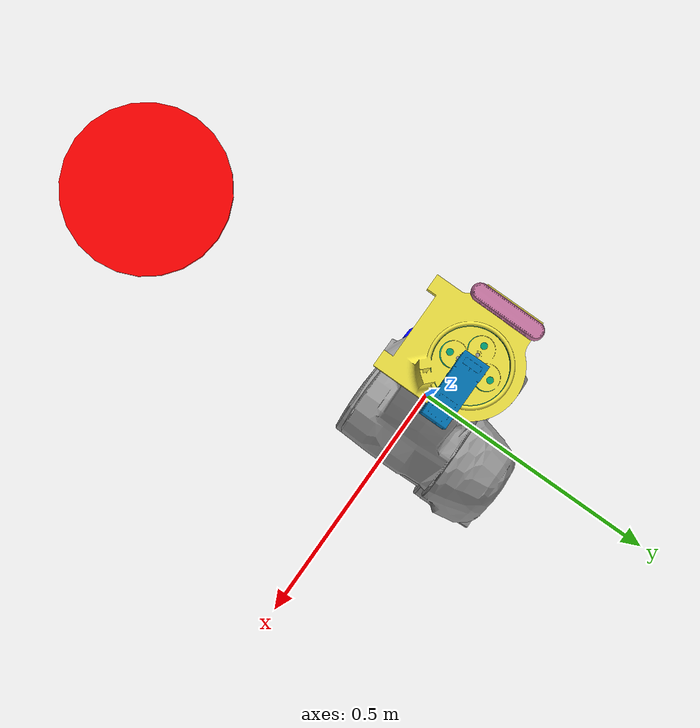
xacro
<?xml version="1.0" encoding="utf-8" ?>
<!-- |    This document was autogenerated by xacro from /home/tomasz/Projects/AddPostPro/src/add_post_pro_robot/urdf/multisensor_robot.urdf.xacro | -->
<!-- |    EDITING THIS FILE BY HAND IS NOT RECOMMENDED                                 | -->
<robot name="add_post_pro_robot">
    <transmission name="trans_1">
        <type>transmission_interface/SimpleTransmission</type>
        <joint name="joint_1">
            <hardwareInterface>hardware_interface/PositionJointInterface</hardwareInterface>
        </joint>
        <actuator name="motor_1">
            <hardwareInterface>hardware_interface/PositionJointInterface</hardwareInterface>
            <mechanicalReduction>1</mechanicalReduction>
        </actuator>
    </transmission>
    <transmission name="trans_2">
        <type>transmission_interface/SimpleTransmission</type>
        <joint name="joint_2">
            <hardwareInterface>hardware_interface/PositionJointInterface</hardwareInterface>
        </joint>
        <actuator name="motor_2">
            <hardwareInterface>hardware_interface/PositionJointInterface</hardwareInterface>
            <mechanicalReduction>1</mechanicalReduction>
        </actuator>
    </transmission>
    <transmission name="trans_3">
        <type>transmission_interface/SimpleTransmission</type>
        <joint name="joint_3">
            <hardwareInterface>hardware_interface/PositionJointInterface</hardwareInterface>
        </joint>
        <actuator name="motor_3">
            <hardwareInterface>hardware_interface/PositionJointInterface</hardwareInterface>
            <mechanicalReduction>1</mechanicalReduction>
        </actuator>
    </transmission>
    <transmission name="trans_4">
        <type>transmission_interface/SimpleTransmission</type>
        <joint name="joint_4">
            <hardwareInterface>hardware_interface/PositionJointInterface</hardwareInterface>
        </joint>
        <actuator name="motor_4">
            <hardwareInterface>hardware_interface/PositionJointInterface</hardwareInterface>
            <mechanicalReduction>1</mechanicalReduction>
        </actuator>
    </transmission>
    <transmission name="trans_5">
        <type>transmission_interface/SimpleTransmission</type>
        <joint name="joint_5">
            <hardwareInterface>hardware_interface/PositionJointInterface</hardwareInterface>
        </joint>
        <actuator name="motor_5">
            <hardwareInterface>hardware_interface/PositionJointInterface</hardwareInterface>
            <mechanicalReduction>1</mechanicalReduction>
        </actuator>
    </transmission>
    <transmission name="trans_6">
        <type>transmission_interface/SimpleTransmission</type>
        <joint name="joint_6">
            <hardwareInterface>hardware_interface/PositionJointInterface</hardwareInterface>
        </joint>
        <actuator name="motor_6">
            <hardwareInterface>hardware_interface/PositionJointInterface</hardwareInterface>
            <mechanicalReduction>1</mechanicalReduction>
        </actuator>
    </transmission>
    <gazebo>
        <plugin filename="libgazebo_ros_control.so" name="gazebo_ros_control">
            <robotNamespace>/add_post_pro_robot</robotNamespace>
        </plugin>
    </gazebo>
    <link name="world" />
    <joint name="joint_w" type="fixed">
        <parent link="world" />
        <child link="base_link" />
        <origin xyz="0 0 0" />
    </joint>
    <link name="base_link">
        <visual>
            <origin rpy="0 0 0" xyz="0 0 0" />
            <geometry>
                <mesh filename="package://denso_robot_descriptions/vs6577_description/meshes/base_link.dae" scale="1 1 1" />
            </geometry>
        </visual>
        <collision>
            <origin rpy="0 0 0" xyz="0 0 0" />
            <geometry>
                <mesh filename="package://denso_robot_descriptions/vs6577_description/meshes/base_link.dae" scale="1 1 1" />
            </geometry>
        </collision>

<inertial>
            <mass value="1" />
            <origin rpy="0.000000 0.000000 0.000000" xyz="0.000000 0.000000 0.000000" />
            <inertia ixx="1" ixy="0" ixz="0" iyy="1" iyz="0" izz="1" />
        </inertial>

    </link>
    <link name="J1">
        <visual>
            <origin rpy="0 0 0" xyz="0 0 0" />
            <geometry>
                <mesh filename="package://denso_robot_descriptions/vs6577_description/meshes/J1.dae" scale="1 1 1" />
            </geometry>
        </visual>
        <collision>
            <origin rpy="0 0 0" xyz="0 0 0" />
            <geometry>
                <mesh filename="package://denso_robot_descriptions/vs6577_description/meshes/J1.dae" scale="1 1 1" />
            </geometry>
        </collision>

<inertial>
            <mass value="1" />
            <origin rpy="0.000000 0.000000 0.000000" xyz="0.000000 0.000000 0.000000" />
            <inertia ixx="1" ixy="0" ixz="0" iyy="1" iyz="0" izz="1" />
        </inertial>

    </link>
    <link name="J2">
        <visual>
            <origin rpy="0 0 0" xyz="0 0 0" />
            <geometry>
                <mesh filename="package://denso_robot_descriptions/vs6577_description/meshes/J2.dae" scale="1 1 1" />
            </geometry>
        </visual>
        <collision>
            <origin rpy="0 0 0" xyz="0 0 0" />
            <geometry>
                <mesh filename="package://denso_robot_descriptions/vs6577_description/meshes/J2.dae" scale="1 1 1" />
            </geometry>
        </collision>

<inertial>
            <mass value="1" />
            <origin rpy="0.000000 0.000000 0.000000" xyz="0.000000 0.000000 0.000000" />
            <inertia ixx="1" ixy="0" ixz="0" iyy="1" iyz="0" izz="1" />
        </inertial>

    </link>
    <link name="J3">
        <visual>
            <origin rpy="0 0 0" xyz="0 0 0" />
            <geometry>
                <mesh filename="package://denso_robot_descriptions/vs6577_description/meshes/J3.dae" scale="1 1 1" />
            </geometry>
        </visual>
        <collision>
            <origin rpy="0 0 0" xyz="0 0 0" />
            <geometry>
                <mesh filename="package://denso_robot_descriptions/vs6577_description/meshes/J3.dae" scale="1 1 1" />
            </geometry>
        </collision>

<inertial>
            <mass value="1" />
            <origin rpy="0.000000 0.000000 0.000000" xyz="0.000000 0.000000 0.000000" />
            <inertia ixx="1" ixy="0" ixz="0" iyy="1" iyz="0" izz="1" />
        </inertial>

    </link>
    <link name="J4">
        <visual>
            <origin rpy="0 0 0" xyz="0 0 0" />
            <geometry>
                <mesh filename="package://denso_robot_descriptions/vs6577_description/meshes/J4.dae" scale="1 1 1" />
            </geometry>
        </visual>
        <collision>
            <origin rpy="0 0 0" xyz="0 0 0" />
            <geometry>
                <mesh filename="package://denso_robot_descriptions/vs6577_description/meshes/J4.dae" scale="1 1 1" />
            </geometry>
        </collision>

<inertial>
            <mass value="1" />
            <origin rpy="0.000000 0.000000 0.000000" xyz="0.000000 0.000000 0.000000" />
            <inertia ixx="1" ixy="0" ixz="0" iyy="1" iyz="0" izz="1" />
        </inertial>

    </link>
    <link name="J5">
        <visual>
            <origin rpy="0 0 0" xyz="0 0 0" />
            <geometry>
                <mesh filename="package://denso_robot_descriptions/vs6577_description/meshes/J5.dae" scale="1 1 1" />
            </geometry>
        </visual>
        <collision>
            <origin rpy="0 0 0" xyz="0 0 0" />
            <geometry>
                <mesh filename="package://denso_robot_descriptions/vs6577_description/meshes/J5.dae" scale="1 1 1" />
            </geometry>
        </collision>

<inertial>
            <mass value="1" />
            <origin rpy="0.000000 0.000000 0.000000" xyz="0.000000 0.000000 0.000000" />
            <inertia ixx="1" ixy="0" ixz="0" iyy="1" iyz="0" izz="1" />
        </inertial>

    </link>
    <link name="J6">
        <visual>
            <origin rpy="0 0 0" xyz="0 0 0" />
            <geometry>
                <mesh filename="package://denso_robot_descriptions/vs6577_description/meshes/J6.dae" scale="1 1 1" />
            </geometry>
        </visual>
        <collision>
            <origin rpy="0 0 0" xyz="0 0 0" />
            <geometry>
                <mesh filename="package://denso_robot_descriptions/vs6577_description/meshes/J6.dae" scale="1 1 1" />
            </geometry>
        </collision>

<inertial>
            <mass value="1" />
            <origin rpy="0.000000 0.000000 0.000000" xyz="0.000000 0.000000 0.000000" />
            <inertia ixx="1" ixy="0" ixz="0" iyy="1" iyz="0" izz="1" />
        </inertial>

    </link>
    <gazebo reference="base_link">
        <material>Gazebo/CoM</material>
    </gazebo>
    <gazebo reference="J1">
        <material>Gazebo/Gray</material>
    </gazebo>
    <gazebo reference="J2">
        <material>Gazebo/Gray</material>
    </gazebo>
    <gazebo reference="J3">
        <material>Gazebo/Gray</material>
    </gazebo>
    <gazebo reference="J4">
        <material>Gazebo/Gray</material>
    </gazebo>
    <gazebo reference="J5">
        <material>Gazebo/Gray</material>
    </gazebo>
    <gazebo reference="J6">
        <material>Gazebo/Gray</material>
    </gazebo>
    <gazebo reference="EEF_tool_mount">
        <material>Gazebo/CoM</material>
    </gazebo>
    <gazebo>
        <gravity>False</gravity>
    </gazebo>
    <joint name="joint_1" type="revolute">
        <parent link="base_link" />
        <child link="J1" />
        <origin rpy="0.000000 0.000000 0.000000" xyz="0.000000 0.000000 0.000000" />
        <axis xyz="-0.000000 -0.000000 1.000000" />
        <limit effort="100" lower="-2.96706" upper="2.96706" velocity="10" />
        <dynamics damping="0" friction="0" />
    </joint>
    <joint name="joint_2" type="revolute">
        <parent link="J1" />
        <child link="J2" />
        <origin rpy="0.000000 0.000000 0.000000" xyz="0.075000 0.000000 0.335000" />
        <axis xyz="-0.000000 1.000000 -0.000000" />
        <limit effort="100" lower="-1.745329" upper="2.356194" velocity="10" />
        <dynamics damping="0" friction="0" />
    </joint>
    <joint name="joint_3" type="revolute">
        <parent link="J2" />
        <child link="J3" />
        <origin rpy="0.000000 0.000000 0.000000" xyz="0.000000 0.000000 0.365000" />
        <axis xyz="-0.000000 1.000000 -0.000000" />
        <limit effort="100" lower="-2.076942" upper="2.949606" velocity="10" />
        <dynamics damping="0" friction="0" />
    </joint>
    <joint name="joint_4" type="revolute">
        <parent link="J3" />
        <child link="J4" />
        <origin rpy="0.000000 0.000000 0.000000" xyz="-0.090000 0.000000 -0.700000" />
        <axis xyz="-0.000000 -0.000000 1.000000" />
        <limit effort="100" lower="-3.316126" upper="3.316126" velocity="10" />
        <dynamics damping="0" friction="0" />
    </joint>
    <joint name="joint_5" type="revolute">
        <parent link="J4" />
        <child link="J5" />
        <origin rpy="0.000000 0.000000 0.000000" xyz="0.000000 0.000000 1.105000" />
        <axis xyz="-0.000000 1.000000 -0.000000" />
        <limit effort="100" lower="-2.094395" upper="2.094395" velocity="10" />
        <dynamics damping="0" friction="0" />
    </joint>
    <joint name="joint_6" type="revolute">
        <parent link="J5" />
        <child link="J6" />
        <origin rpy="0.000000 0.000000 0.000000" xyz="0.000000 0.000000 0.080000" />
        <axis xyz="-0.000000 -0.000000 1.000000" />
        <limit effort="100" lower="-6.283185" upper="6.283185" velocity="10" />
        <dynamics damping="0" friction="0" />
    </joint>
    <link name="turntable_base">
        <visual>
            <origin rpy="0 0 0" xyz="0 0 0" />
            <geometry>
                <cylinder length=".32" radius=".02" />
            </geometry>
        </visual>
        <collision>
            <origin rpy="0 0 0" xyz="0 0 0" />
            <geometry>
                <cylinder length=".32" radius=".02" />
            </geometry>
        </collision>

        <inertial>
            <origin rpy="0 0 0" xyz="0 0 0" />
            <mass value="1" />
            <inertia ixx="100" ixy="0" ixz="0" iyy="100" iyz="0" izz="100" />
        </inertial>

    </link>
    <link name="turntable_plate">
        <visual>
            <origin rpy="0 0 0" xyz="0 0 0" />
            <geometry>
                <cylinder length=".01" radius=".15" />
            </geometry>
            <material name="Red">
                <color rgba="1.0 0 0 1.0" />
            </material>
        </visual>
        <collision>
            <origin rpy="0 0 0" xyz="0 0 0" />
            <geometry>
                <cylinder length=".01" radius=".15" />
            </geometry>
        </collision>

<inertial>
            <origin rpy="0 0 0" xyz="0 0 0" />
            <mass value="1" />
            <inertia ixx="100" ixy="0" ixz="0" iyy="100" iyz="0" izz="100" />
        </inertial>

    </link>
    <joint name="turntable_joint" type="fixed">
        <parent link="world" />
        <child link="turntable_base" />
        <origin rpy="0 0 0" xyz="0 -.6 0.16" />
    </joint>
    <joint name="turntable_revolve_joint" type="continuous">
        <parent link="turntable_base" />
        <child link="turntable_plate" />
        <origin rpy="0.000000 0.000000 0.000000" xyz="0.000000 0.000000 .16" />
        <limit effort="100" velocity="10" />
        <axis xyz="0 0 1" />
    </joint>
    <transmission name="trans_turntable_revolve_joint">
        <type>transmission_interface/SimpleTransmission</type>
        <joint name="turntable_revolve_joint">
            <hardwareInterface>hardware_interface/PositionJointInterface</hardwareInterface>
        </joint>
        <actuator name="turntable_revolve_joint_motor">
            <hardwareInterface>hardware_interface/PositionJointInterface</hardwareInterface>
            <mechanicalReduction>1</mechanicalReduction>
        </actuator>
    </transmission>
    <link name="EEF_tool_mount">
        <visual>
            <origin rpy="0.000000 0 0" xyz="0 0 0" />
            <geometry>
                <mesh filename="package://add_post_pro_robot/meshes/tool_mount.stl" scale=".001 .001 .001" />
            </geometry>
        </visual>
        <collision>
            <origin rpy="0.000000 0 0" xyz="0 0 0" />
            <geometry>
                <mesh filename="package://add_post_pro_robot/meshes/tool_mount.stl" scale=".001 .001 .001" />
            </geometry>
        </collision>

<inertial>
            <mass value="1" />
            <origin rpy="0.000000 0.000000 0.000000" xyz="0.000000 0.000000 0.000000" />
            <inertia ixx="1" ixy="0" ixz="0" iyy="1" iyz="0" izz="1" />
        </inertial>

    </link>
    <link name="EEF_sensor_holder">
        <visual>
            <origin rpy="0 0 0" xyz="0 0 0" />
            <geometry>
                <mesh filename="package://add_post_pro_robot/meshes/multisensor_holder_origin.stl" scale=".001 .001 .001" />
            </geometry>
        </visual>
        <collision>
            <origin rpy="0 0 0" xyz="0 0 0" />
            <geometry>
                <mesh filename="package://add_post_pro_robot/meshes/multisensor_holder_origin.stl" scale=".001 .001 .001" />
            </geometry>
        </collision>

<inertial>
            <mass value="1" />
            <origin rpy="0.000000 0.000000 0.000000" xyz="0.000000 0.000000 0.000000" />
            <inertia ixx="1" ixy="0" ixz="0" iyy="1" iyz="0" izz="1" />
        </inertial>

    </link>
    <link name="EEF_scanner" />
    <link name="EEF_depstech_camera" />
    <joint name="end_effector_mount" type="fixed">
        <parent link="J6" />
        <child link="EEF_tool_mount" />
        <origin rpy="0.000000 0.000000 0.000000" xyz="0.000000 0.000000 0.000000" />
    </joint>
    <joint name="end_effector_magnet" type="fixed">
        <parent link="J6" />
        <child link="EEF_sensor_holder" />
        <origin rpy="0.000000 0.000000 3.14159265359" xyz="0.000000 0.000000 0.000000" />
    </joint>
    <joint name="end_effector_scanner_holder" type="fixed">
        <parent link="EEF_sensor_holder" />
        <child link="EEF_scanner" />
        <origin rpy="0.000000 3.14159265359 1.57079632679" xyz="-0.035 0.0 0.0" />
    </joint>
    <joint name="end_effector_depstech_holder" type="fixed">
        <parent link="EEF_sensor_holder" />
        <child link="EEF_depstech_camera" />
        <origin rpy="0.392699081699 -0.785398163397 -0.795339912301" xyz="-0.042000 0.0353000 0.19000" />

    </joint>
    <!-- Camera link  -->
    <link name="D415_camera">
        <visual>
            <origin rpy="1.57079632679 0 1.57079632679" xyz="0 0 0" />
            <geometry>
                <mesh filename="package://realsense_cam/meshes/simplified_d415.stl" />
            </geometry>
        </visual>
        <collision>
            <geometry>
                <box size="0.0078 0.130 0.0192" />
            </geometry>
        </collision>

<inertial>
            <mass value="0.0615752" />
            <origin rpy="0 0 0" xyz="0 0 0" />
            <inertia ixx="9.108e-05" ixy="0" ixz="0" iyy="2.51e-06" iyz="0" izz="8.931e-05" />
        </inertial>

    </link>
    <!-- Connect camera to parent frame-->
    <joint name="realsense_joint" type="fixed">
        <parent link="EEF_sensor_holder" />
        <child link="D415_camera" />
        <origin rpy="0 -1.57079632679 3.14159265359" xyz=".075 0.001 .031" />
    </joint>
    <!-- Virtual links representing the cameras positons and orientations  ".075 0.001 .031"-->
    <link name="camera_for_ray_query" />
    <link name="D415_color_optical_frame" />
    <link name="D415_depth_optical_frame" />
    <link name="D415_ired1_optical_frame" />
    <link name="D415_ired2_optical_frame" />
    <!-- Joints positioning the virtual links with respect to the camera main link-->
    <joint name="ray_query_joint" type="fixed">
        <parent link="D415_camera" />
        <child link="camera_for_ray_query" />
        <!-- The default position is change since in Rviz the cloud depth axis is Z not X-->
        <origin rpy="1.57079632679 3.14159265359 1.57079632679" xyz="0 0 0 " />
    </joint>
    <joint name="color_joint" type="fixed">
        <parent link="D415_camera" />
        <child link="D415_color_optical_frame" />
        <!-- The default position is change since in Rviz the cloud depth axis is Z not X-->
        <origin rpy="1.57079632679 3.14159265359 1.57079632679" xyz="0 0 0 " />
    </joint>
    <joint name="depth_joint" type="fixed">
        <parent link="D415_camera" />
        <child link="D415_depth_optical_frame" />
        <origin rpy="0 0 0" xyz="0 0 0" />
    </joint>
    <joint name="ired1_joint" type="fixed">
        <parent link="D415_camera" />
        <child link="D415_ired1_optical_frame" />
        <origin rpy="0 0 0" xyz="0 0 0" />
    </joint>
    <joint name="ired2_joint" type="fixed">
        <parent link="D415_camera" />
        <child link="D415_ired2_optical_frame" />
        <origin rpy="0 0 0" xyz="0 -0.055 0" />
    </joint>
    <!-- GAZEBO DEFINITIONS ***************************************-->
    <!-- Load plugin to the model ("robot" in urdf format)-->
    <gazebo>
        <plugin filename="librealsense_gazebo_plugin.so" name="D415" />
    </gazebo>
    <!-- Load parameters to model's main link-->
    <gazebo reference="D415_camera">
        <self_collide>0</self_collide>
        <enable_wind>0</enable_wind>
        <kinematic>0</kinematic>
        <gravity>1</gravity>
        <mu2>1</mu2>
        <fdir1>0 0 0</fdir1>
        <kp>1e+13</kp>
        <kd>1</kd>
        <sensor name="camera_for_ray_query" type="camera">
            <frameName>camera_for_ray_query</frameName>
            <pose frame="">0 0 0 0 0 0</pose>
            <camera name="D415_camera">
                <horizontal_fov>1.211259</horizontal_fov>
                <image>
                    <width>1280</width>
                    <height>720</height>
                    <format>R8G8B8</format>
                </image>
                <clip>
                    <near>0.1</near>
                    <far>100</far>
                </clip>
                <noise>
                    <type>gaussian</type>
                    <mean>0.0</mean>
                    <stddev>0.007</stddev>
                </noise>
            </camera>
            <plugin name='ray_query' filename='libRayQuery.so'/>
            <always_on>1</always_on>
            <update_rate>30</update_rate>
            <visualize>1</visualize>
        </sensor>
        <sensor name="D415_color_optical_frame" type="camera">
            <frameName>D415_color_optical_frame</frameName>
            <pose frame="">0 0 0 0 0 0</pose>
            <camera name="D415_camera">
                <horizontal_fov>1.211259</horizontal_fov>
                <image>
                    <width>1280</width>
                    <height>720</height>
                    <format>RGB_INT8</format>
                </image>
                <clip>
                    <near>0.1</near>
                    <far>100</far>
                </clip>
                <noise>
                    <type>gaussian</type>
                    <mean>0.0</mean>
                    <stddev>0.007</stddev>
                </noise>
            </camera>
            <always_on>1</always_on>
            <update_rate>60</update_rate>
            <visualize>1</visualize>
        </sensor>
        <sensor name="D415_ired1_optical_frame" type="camera">
            <frameName>D415_ired1_optical_frame</frameName>
            <pose frame="">0 0 0 0 0 0</pose>
            <camera name="D415_camera">
                <horizontal_fov>1.047</horizontal_fov>
                <image>
                    <width>1280</width>
                    <height>720</height>
                    <format>L_INT8</format>
                </image>
                <clip>
                    <near>0.1</near>
                    <far>100</far>
                </clip>
                <noise>
                    <type>gaussian</type>
                    <mean>0.0</mean>
                    <stddev>0.05</stddev>
                </noise>
            </camera>
            <always_on>1</always_on>
            <update_rate>60</update_rate>
            <visualize>0</visualize>
        </sensor>
        <sensor name="D415_ired2_optical_frame" type="camera">
            <frameName>D415_ired2_optical_frame</frameName>
            <pose frame="">0 -0.055 0 0 0</pose>
            <camera name="D415_camera">
                <horizontal_fov>1.047</horizontal_fov>
                <image>
                    <width>1280</width>
                    <height>720</height>
                    <format>L_INT8</format>
                </image>
                <clip>
                    <near>0.1</near>
                    <far>100</far>
                </clip>
                <noise>
                    <type>gaussian</type>
                    <mean>0.0</mean>
                    <stddev>0.05</stddev>
                </noise>
            </camera>
            <always_on>1</always_on>
            <update_rate>60</update_rate>
            <visualize>0</visualize>
        </sensor>
        <sensor name="D415_depth_optical_frame" type="depth">
            <pose frame="">0 0 0 0 0 0</pose>
            <camera name="D415_camera">
                <frameName>D415_depth_optical_frame</frameName>
                <horizontal_fov>1.13446</horizontal_fov>
                <image>
                    <width>1280</width>
                    <height>720</height>
                </image>
                <clip>
                    <near>0.1</near>
                    <far>100</far>
                </clip>
                <noise>
                    <type>gaussian</type>
                    <mean>0.0</mean>
                    <stddev>0.100</stddev>
                </noise>
            </camera>
            <always_on>1</always_on>
            <update_rate>60</update_rate>
            <visualize>0</visualize>
        </sensor>
    </gazebo>
    <!-- DONE -->
    <!-- Scanner link -->
    <link name="EEF_scancontrol">
        <visual>
            <origin rpy="0 0 0" xyz="0 0 0" />
            <geometry>
                <mesh filename="package://add_post_pro_robot/meshes/scancontrol2900.stl" scale=".001 .001 .001" />
            </geometry>
        </visual>
        <collision>
            <origin rpy="0 0 0" xyz="0 0 0" />
            <geometry>
                <mesh filename="package://add_post_pro_robot/meshes/scancontrol2900_collision.stl" scale=".001 .001 .001" />
            </geometry>
        </collision>

<inertial>
            <mass value="1" />
            <origin rpy="0.000000 0.000000 0.000000" xyz="0.000000 0.000000 0.000000" />
            <inertia ixx="1" ixy="0" ixz="0" iyy="1" iyz="0" izz="1" />
        </inertial>

    </link>
    <link name="scancontrol2900-50_laser" />
    <joint name="end_effector_scanner" type="fixed">
        <parent link="EEF_scanner" />
        <child link="EEF_scancontrol" />
        <origin rpy="0.000000 0.000000 0.000000" xyz="0.000000 0.000000 0.000000" />
    </joint>
    <joint name="laser_joint" type="fixed">
        <parent link="EEF_scancontrol" />
        <child link="scancontrol2900-50_laser" />
        <origin rpy="0 1.57079632679 -1.57079632679" xyz="0 -0.0324522 -.0761366" />
    </joint>
    <gazebo reference="scancontrol2900-50_laser">
        <sensor name="scancontrol" type="ray">
            <pose>0 0 0 0 0 0</pose>
            <visualize>true</visualize>
            <update_rate>40</update_rate>
            <ray>
                <scan>
                    <horizontal>
                        <samples>1024</samples>
                        <resolution>1</resolution>
                        <min_angle>-0.392699081699</min_angle>
                        <max_angle>0.392699081699</max_angle>
                    </horizontal>
                </scan>
                <range>
                    <min>0.1</min>
                    <max>0.500</max>
                    <resolution>0.01</resolution>
                </range>
            </ray>
            <plugin filename="libgazebo_ros_laser.so" name="scancontrol_laser">
                <topicName>/arm/laser_scan</topicName>
                <frameName>scancontrol2900-50_laser</frameName>
            </plugin>
        </sensor>
    </gazebo>
    <link name="depstech_camera_link">
        <collision>
            <origin rpy="0 0 0" xyz="0 0 0" />
            <geometry>
                <cylinder length="0.02" radius="0.01" />
            </geometry>
        </collision>

<inertial>
            <mass value="1e-5" />
            <origin rpy="0 0 0" xyz="0 0 0" />
            <inertia ixx="1e-6" ixy="0" ixz="0" iyy="1e-6" iyz="0" izz="1e-6" />
        </inertial>

    </link>
    <joint name="camera_link_joint" type="fixed">
        <parent link="EEF_depstech_camera" />
        <child link="depstech_camera_link" />
        <origin rpy="0.000000 0.000000 0.000000" xyz="0.000000 0.000000 0.000000" />
    </joint>
    <!-- camera -->
    <gazebo reference="depstech_camera_link">
        <sensor name="depstech_camera" type="camera">
            <update_rate>30.0</update_rate>
            <camera name="depstech_camera">
                <horizontal_fov>1.3962634</horizontal_fov>
                <image>
                    <width>800</width>
                    <height>800</height>
                    <format>R8G8B8</format>
                </image>
                <clip>
                    <near>0.02</near>
                    <far>300</far>
                </clip>
                <noise>
                    <type>gaussian</type>
                    <!-- Noise is sampled independently per pixel on each frame.
               That pixel's noise value is added to each of its color
               channels, which at that point lie in the range [0,1]. -->
                    <mean>0.0</mean>
                    <stddev>0.007</stddev>
                </noise>
            </camera>
            <plugin filename="libgazebo_ros_camera.so" name="camera_controller">
                <alwaysOn>true</alwaysOn>
                <updateRate>0.0</updateRate>
                <cameraName>depstech_camera/camera/</cameraName>
                <imageTopicName>image_raw</imageTopicName>
                <cameraInfoTopicName>camera_info</cameraInfoTopicName>
                <frameName>depstech_camera_link</frameName>
                <hackBaseline>0.07</hackBaseline>
                <distortionK1>0.0</distortionK1>
                <distortionK2>0.0</distortionK2>
                <distortionK3>0.0</distortionK3>
                <distortionT1>0.0</distortionT1>
                <distortionT2>0.0</distortionT2>
            </plugin>
        </sensor>
    </gazebo>

    <!-- END OF SCANCONTROL -->
    <gazebo reference="EEF_sensor_holder">
        <material>Gazebo/CoM</material>
    </gazebo>
    <gazebo reference="D415_camera">
        <material>Gazebo/CoM</material>
    </gazebo>

</robot>
